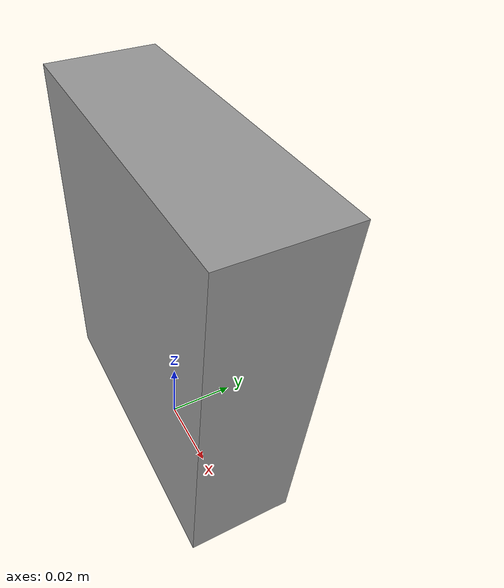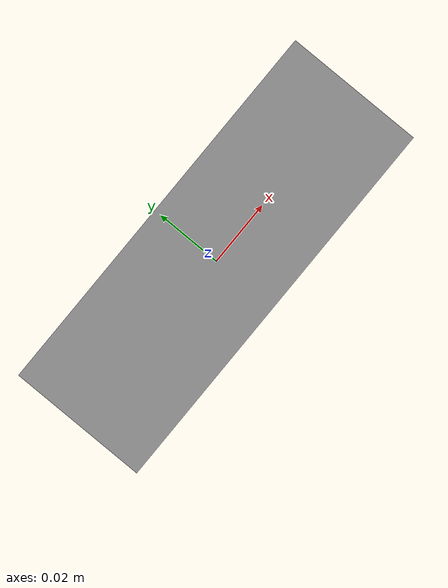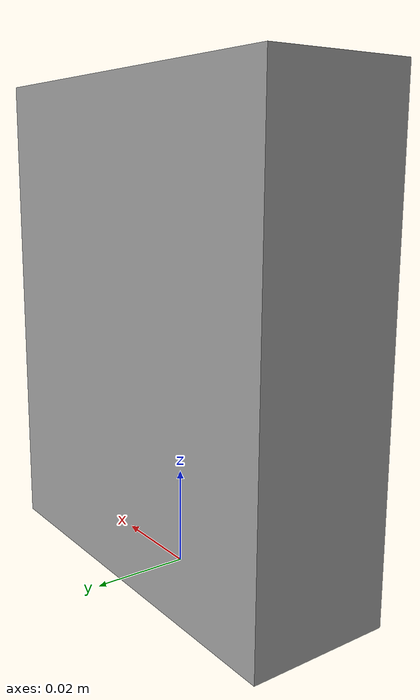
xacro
<?xml version="1.0"?>

<robot xmlns:xacro="http://www.ros.org/wiki/xacro">

    <link name="base_link"/>

    <link name="palm">

        <!-- Visual -->
        <visual>
            <geometry>
                <box size="0.085 0.030 0.10"/>
            </geometry>
            <material name="grey"/>
        </visual>

        <!-- Simple collision -->
        <collision>
            <geometry>
                <box size="0.080 0.030 0.100"/>
            </geometry>
        </collision>

    </link>

    <joint name="base_to_palm_joint" type="fixed">
        <parent link="base_link"/>
        <child link="palm"/>
        <origin xyz="0 0 0.05" rpy="0 0 0"/>
    </joint>

</robot>
